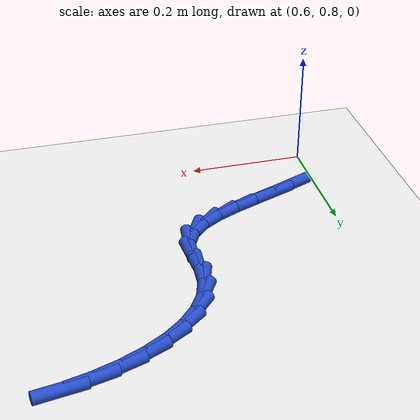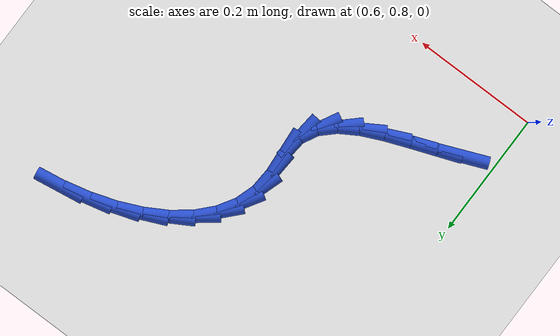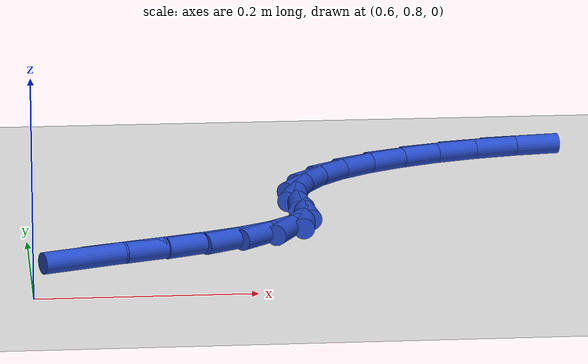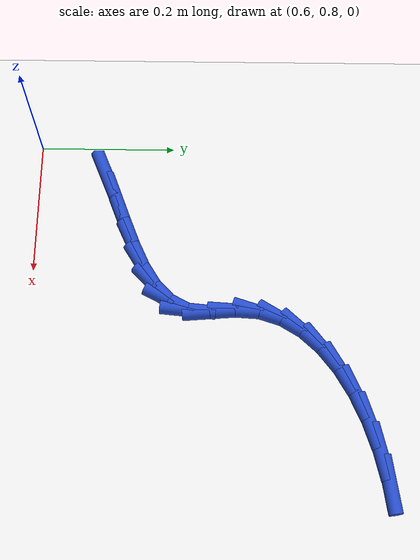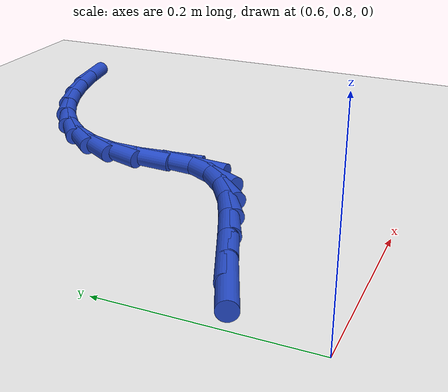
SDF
<sdf version="1.6">
 <world name="default">
  <model name="ground_plane">
   <static>1</static>
   <link name="link">
    <collision name="collision">
     <geometry><plane><normal>0 0 1</normal><size>100 100</size></plane></geometry>
     <surface><friction><ode><mu>100</mu><mu2>50</mu2></ode></friction></surface>
    </collision>
    <visual name="visual">
     <cast_shadows>0</cast_shadows>
     <geometry><plane><normal>0 0 1</normal><size>100 100</size></plane></geometry>
     <material>
      <script><uri>file://media/materials/scripts/gazebo.material</uri><name>Gazebo/WhiteGlow</name></script>
     </material>
    </visual>
   </link>
  </model>
  <model name="line">
   <link name="link_34">
    <pose>0.6479734508677638 0.9000650332347762 0.01 0 1.57 0.3910132116865285</pose>
    <collision name="collision">
     <geometry><cylinder><radius>0.01</radius><length>0.08</length></cylinder></geometry>
    </collision>
    <visual name="visual">
     <material>
      <script><name>Gazebo/Blue</name><uri>file://media/materials/scripts/gazebo.material</uri></script>
     </material>
     <geometry><cylinder><radius>0.01</radius><length>0.08</length></cylinder></geometry>
    </visual>
   </link>
   <link name="link_35">
    <pose>0.6857594909900793 0.915641943583489 0.01 0 1.57 0.35953681462104947</pose>
    <collision name="collision">
     <geometry><cylinder><radius>0.01</radius><length>0.08</length></cylinder></geometry>
    </collision>
    <visual name="visual">
     <material>
      <script><name>Gazebo/Blue</name><uri>file://media/materials/scripts/gazebo.material</uri></script>
     </material>
     <geometry><cylinder><radius>0.01</radius><length>0.08</length></cylinder></geometry>
    </visual>
   </link>
   <link name="link_36">
    <pose>0.7243866209789083 0.9301608826444987 0.01 0 1.57 0.3708876614324501</pose>
    <collision name="collision">
     <geometry><cylinder><radius>0.01</radius><length>0.08</length></cylinder></geometry>
    </collision>
    <visual name="visual">
     <material>
      <script><name>Gazebo/Blue</name><uri>file://media/materials/scripts/gazebo.material</uri></script>
     </material>
     <geometry><cylinder><radius>0.01</radius><length>0.08</length></cylinder></geometry>
    </visual>
   </link>
   <link name="link_37">
    <pose>0.7619136653582389 0.9447545765250394 0.01 0 1.57 0.4296470278583007</pose>
    <collision name="collision">
     <geometry><cylinder><radius>0.01</radius><length>0.08</length></cylinder></geometry>
    </collision>
    <visual name="visual">
     <material>
      <script><name>Gazebo/Blue</name><uri>file://media/materials/scripts/gazebo.material</uri></script>
     </material>
     <geometry><cylinder><radius>0.01</radius><length>0.08</length></cylinder></geometry>
    </visual>
   </link>
   <link name="link_38">
    <pose>0.796399448652059 0.9605557513323455 0.01 0 1.57 0.5512978442683394</pose>
    <collision name="collision">
     <geometry><cylinder><radius>0.01</radius><length>0.08</length></cylinder></geometry>
    </collision>
    <visual name="visual">
     <material>
      <script><name>Gazebo/Blue</name><uri>file://media/materials/scripts/gazebo.material</uri></script>
     </material>
     <geometry><cylinder><radius>0.01</radius><length>0.08</length></cylinder></geometry>
    </visual>
   </link>
   <link name="link_39">
    <pose>0.8259027953843573 0.9786971331736517 0.01 0 1.57 0.7635566214791604</pose>
    <collision name="collision">
     <geometry><cylinder><radius>0.01</radius><length>0.08</length></cylinder></geometry>
    </collision>
    <visual name="visual">
     <material>
      <script><name>Gazebo/Blue</name><uri>file://media/materials/scripts/gazebo.material</uri></script>
     </material>
     <geometry><cylinder><radius>0.01</radius><length>0.08</length></cylinder></geometry>
    </visual>
   </link>
   <link name="link_40">
    <pose>0.8484825300791218 1.0003114481561928 0.01 0 1.57 1.088861556387261</pose>
    <collision name="collision">
     <geometry><cylinder><radius>0.01</radius><length>0.08</length></cylinder></geometry>
    </collision>
    <visual name="visual">
     <material>
      <script><name>Gazebo/Blue</name><uri>file://media/materials/scripts/gazebo.material</uri></script>
     </material>
     <geometry><cylinder><radius>0.01</radius><length>0.08</length></cylinder></geometry>
    </visual>
   </link>
   <link name="link_41">
    <pose>0.8621974772603399 1.0265314223872022 0.01 0 1.57 1.4735262635273387</pose>
    <collision name="collision">
     <geometry><cylinder><radius>0.01</radius><length>0.08</length></cylinder></geometry>
    </collision>
    <visual name="visual">
     <material>
      <script><name>Gazebo/Blue</name><uri>file://media/materials/scripts/gazebo.material</uri></script>
     </material>
     <geometry><cylinder><radius>0.01</radius><length>0.08</length></cylinder></geometry>
    </visual>
   </link>
   <link name="link_42">
    <pose>0.865307034237414 1.0583988201567092 0.01 0 1.57 -1.4897214137696533</pose>
    <collision name="collision">
     <geometry><cylinder><radius>0.01</radius><length>0.08</length></cylinder></geometry>
    </collision>
    <visual name="visual">
     <material>
      <script><name>Gazebo/Blue</name><uri>file://media/materials/scripts/gazebo.material</uri></script>
     </material>
     <geometry><cylinder><radius>0.01</radius><length>0.08</length></cylinder></geometry>
    </visual>
   </link>
   <link name="link_43">
    <pose>0.8624077120073235 1.094081459642477 0.01 0 1.57 1.5092702640326205</pose>
    <collision name="collision">
     <geometry><cylinder><radius>0.01</radius><length>0.08</length></cylinder></geometry>
    </collision>
    <visual name="visual">
     <material>
      <script><name>Gazebo/Blue</name><uri>file://media/materials/scripts/gazebo.material</uri></script>
     </material>
     <geometry><cylinder><radius>0.01</radius><length>0.08</length></cylinder></geometry>
    </visual>
   </link>
   <link name="link_44">
    <pose>0.8645444560755889 1.1287667150928553 0.01 0 1.57 1.2576299831816027</pose>
    <collision name="collision">
     <geometry><cylinder><radius>0.01</radius><length>0.08</length></cylinder></geometry>
    </collision>
    <visual name="visual">
     <material>
      <script><name>Gazebo/Blue</name><uri>file://media/materials/scripts/gazebo.material</uri></script>
     </material>
     <geometry><cylinder><radius>0.01</radius><length>0.08</length></cylinder></geometry>
    </visual>
   </link>
   <link name="link_45">
    <pose>0.8749026464699916 1.1607539819064296 0.01 0 1.57 1.0242996294956264</pose>
    <collision name="collision">
     <geometry><cylinder><radius>0.01</radius><length>0.08</length></cylinder></geometry>
    </collision>
    <visual name="visual">
     <material>
      <script><name>Gazebo/Blue</name><uri>file://media/materials/scripts/gazebo.material</uri></script>
     </material>
     <geometry><cylinder><radius>0.01</radius><length>0.08</length></cylinder></geometry>
    </visual>
   </link>
   <link name="link_46">
    <pose>0.8926577947002398 1.1899423500149016 0.01 0 1.57 0.8248542132630601</pose>
    <collision name="collision">
     <geometry><cylinder><radius>0.01</radius><length>0.08</length></cylinder></geometry>
    </collision>
    <visual name="visual">
     <material>
      <script><name>Gazebo/Blue</name><uri>file://media/materials/scripts/gazebo.material</uri></script>
     </material>
     <geometry><cylinder><radius>0.01</radius><length>0.08</length></cylinder></geometry>
    </visual>
   </link>
   <link name="link_47">
    <pose>0.9169592574291473 1.2162413435488524 0.01 0 1.57 0.6607946753579317</pose>
    <collision name="collision">
     <geometry><cylinder><radius>0.01</radius><length>0.08</length></cylinder></geometry>
    </collision>
    <visual name="visual">
     <material>
      <script><name>Gazebo/Blue</name><uri>file://media/materials/scripts/gazebo.material</uri></script>
     </material>
     <geometry><cylinder><radius>0.01</radius><length>0.08</length></cylinder></geometry>
    </visual>
   </link>
   <link name="link_48">
    <pose>0.9469563913195265 1.2395604866388612 0.01 0 1.57 0.5264502032049996</pose>
    <collision name="collision">
     <geometry><cylinder><radius>0.01</radius><length>0.08</length></cylinder></geometry>
    </collision>
    <visual name="visual">
     <material>
      <script><name>Gazebo/Blue</name><uri>file://media/materials/scripts/gazebo.material</uri></script>
     </material>
     <geometry><cylinder><radius>0.01</radius><length>0.08</length></cylinder></geometry>
    </visual>
   </link>
   <link name="link_49">
    <pose>0.981798553034191 1.2598093034155093 0.01 0 1.57 0.41450545651724247</pose>
    <collision name="collision">
     <geometry><cylinder><radius>0.01</radius><length>0.08</length></cylinder></geometry>
    </collision>
    <visual name="visual">
     <material>
      <script><name>Gazebo/Blue</name><uri>file://media/materials/scripts/gazebo.material</uri></script>
     </material>
     <geometry><cylinder><radius>0.01</radius><length>0.08</length></cylinder></geometry>
    </visual>
   </link>
   <link name="link_50">
    <pose>1.0206350992359539 1.2768973180093774 0.01 0 1.57 0.3183875265638465</pose>
    <collision name="collision">
     <geometry><cylinder><radius>0.01</radius><length>0.08</length></cylinder></geometry>
    </collision>
    <visual name="visual">
     <material>
      <script><name>Gazebo/Blue</name><uri>file://media/materials/scripts/gazebo.material</uri></script>
     </material>
     <geometry><cylinder><radius>0.01</radius><length>0.08</length></cylinder></geometry>
    </visual>
   </link>
   <link name="link_51">
    <pose>1.0626153865876282 1.2907340545510457 0.01 0 1.57 0.23275328609844836</pose>
    <collision name="collision">
     <geometry><cylinder><radius>0.01</radius><length>0.08</length></cylinder></geometry>
    </collision>
    <visual name="visual">
     <material>
      <script><name>Gazebo/Blue</name><uri>file://media/materials/scripts/gazebo.material</uri></script>
     </material>
     <geometry><cylinder><radius>0.01</radius><length>0.08</length></cylinder></geometry>
    </visual>
   </link>
   <link name="link_52">
    <pose>1.106888771752027 1.3012290371710944 0.01 0 1.57 0.15328063610386292</pose>
    <collision name="collision">
     <geometry><cylinder><radius>0.01</radius><length>0.08</length></cylinder></geometry>
    </collision>
    <visual name="visual">
     <material>
      <script><name>Gazebo/Blue</name><uri>file://media/materials/scripts/gazebo.material</uri></script>
     </material>
     <geometry><cylinder><radius>0.01</radius><length>0.08</length></cylinder></geometry>
    </visual>
   </link>
  </model>
 </world>
</sdf>
